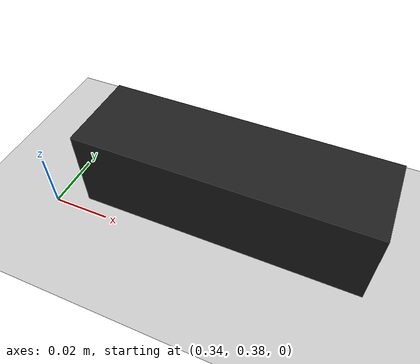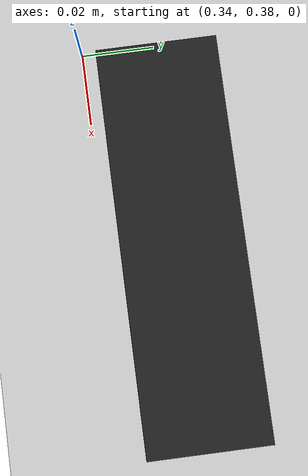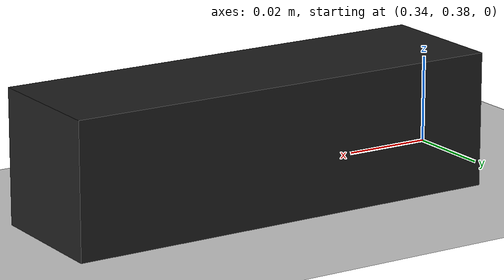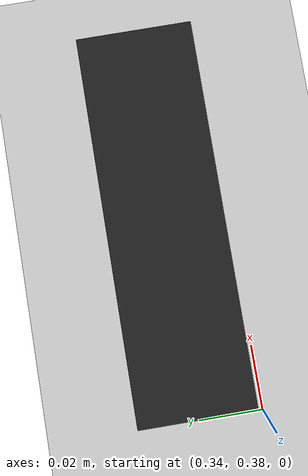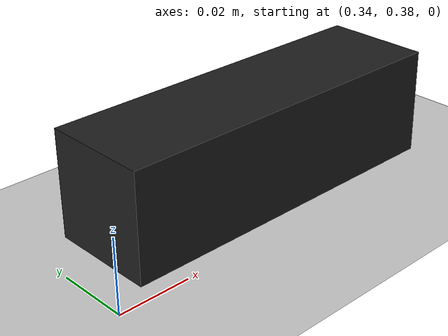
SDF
<sdf version="1.7">
 <world name="default">
  <light name="sun" type="directional">
   <pose>0 0 10 0 -0 0</pose>
   <diffuse>0.8 0.8 0.8 1</diffuse>
   <specular>0.2 0.2 0.2 1</specular>
   <attenuation>
    <range>1000</range>
    <constant>0.9</constant>
    <linear>0.01</linear>
    <quadratic>0.001</quadratic>
   </attenuation>
   <direction>-0.5 0.1 -0.9</direction>
   <spot><inner_angle>0</inner_angle><outer_angle>0</outer_angle><falloff>0</falloff></spot>
  </light>
  <model name="ground_plane">
   <static>1</static>
   <link name="link">
    <collision name="collision">
     <geometry><plane><normal>0 0 1</normal><size>100 100</size></plane></geometry>
     <surface>
      <contact><collide_bitmask>65535</collide_bitmask></contact>
      <friction><ode><mu>100</mu><mu2>50</mu2></ode></friction>
     </surface>
    </collision>
    <visual name="visual">
     <cast_shadows>0</cast_shadows>
     <geometry><plane><normal>0 0 1</normal><size>100 100</size></plane></geometry>
     <material>
      <script><uri>file://media/materials/scripts/gazebo.material</uri><name>Gazebo/Gray</name></script>
     </material>
    </visual>
   </link>
  </model>
  <gravity>0 0 -9.8</gravity>
  <magnetic_field>6e-06 2.3e-05 -4.2e-05</magnetic_field>
  <atmosphere type="adiabatic"/>
  <physics type="ode">
   <max_step_size>0.001</max_step_size>
   <real_time_factor>1</real_time_factor>
   <real_time_update_rate>1000</real_time_update_rate>
  </physics>
  <scene><ambient>0.8 0.8 0.8 0.8</ambient><background>0.7 0.7 0.7 0.7</background><shadows>0</shadows></scene>
  <spherical_coordinates>
   <surface_model>EARTH_WGS84</surface_model>
   <latitude_deg>0</latitude_deg>
   <longitude_deg>0</longitude_deg>
   <elevation>0</elevation>
   <heading_deg>0</heading_deg>
  </spherical_coordinates>
  <model name="box">
   <pose>0.4 0.4 0.015 0 -0 0</pose>
   <link name="link">
    <inertial>
     <mass>0.01</mass>
     <inertia>
      <ixx>0.166667</ixx>
      <ixy>0</ixy>
      <ixz>0</ixz>
      <iyy>0.166667</iyy>
      <iyz>0</iyz>
      <izz>0.166667</izz>
     </inertia>
    </inertial>
    <collision name="collision">
     <geometry><box><size>0.10 0.03 0.03</size></box></geometry>
     <max_contacts>40</max_contacts>
     <surface>
      <contact><ode><kp>10e+13</kp><kd>1</kd><max_vel>0.01</max_vel><min_depth>0.001</min_depth></ode></contact>
      <friction><ode><mu>1.0</mu><mu2>1.0</mu2></ode></friction>
     </surface>
    </collision>
    <visual name="visual">
     <geometry><box><size>0.1 0.03 0.03</size></box></geometry>
     <material>
      <script><name>Gazebo/Black</name><uri>file://media/materials/scripts/gazebo.material</uri></script>
     </material>
    </visual>
   </link>
  </model>
 </world>
</sdf>
